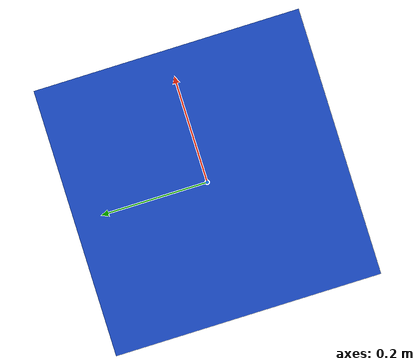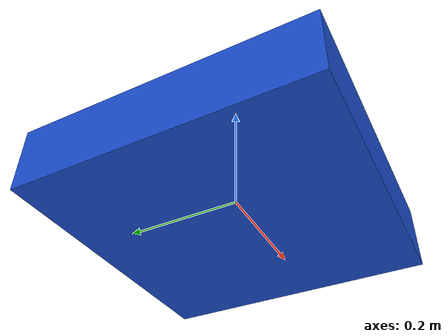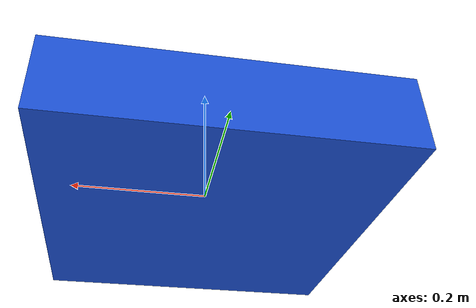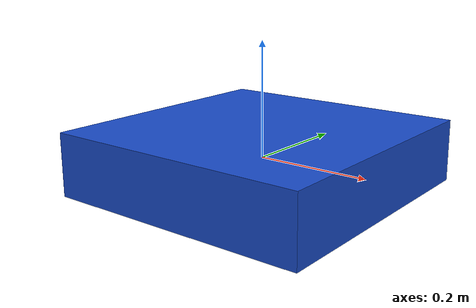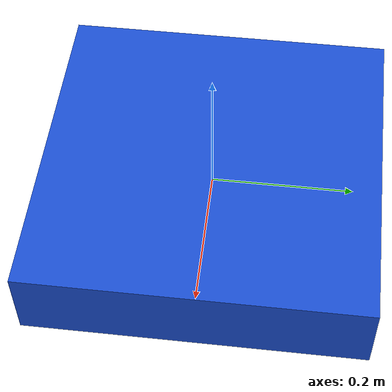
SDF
<?xml version="1.0"?>
<sdf version="1.6">
  <model name="sjtu_drone">
    <link name="base_link">
      <pose>0 0 0 0 0 0</pose>
      <gravity>false</gravity>
      <inertial>
        <mass>1.477</mass>
        <inertia><ixx>0.01152</ixx><iyy>0.01152</iyy><izz>0.0218</izz></inertia>
      </inertial>
      <collision name="body_col"><geometry><box><size>0.47 0.47 0.11</size></box></geometry></collision>
      <visual name="body_vis"><geometry><box><size>0.47 0.47 0.11</size></box></geometry><material><ambient>0.1 0.3 0.8 1</ambient></material></visual>

      <sensor name="left_camera" type="camera">
        <pose>0.25 0.06 0.00 0 0 0</pose>
        <always_on>true</always_on><update_rate>30</update_rate><visualize>false</visualize>
        <camera name="left_camera">
          <horizontal_fov>1.3962634</horizontal_fov>
          <image><width>752</width><height>480</height><format>R8G8B8</format></image>
          <clip><near>0.05</near><far>50.0</far></clip>
        </camera>
        <plugin name="left_camera_plugin" filename="libgazebo_ros_camera.so">
          <ros><namespace>/simple_drone</namespace><remapping>image_raw:=left_camera/image_raw</remapping><remapping>camera_info:=left_camera/camera_info</remapping></ros>
          <camera_name>left_camera</camera_name>
          <frame_name>left_camera_link</frame_name>
        </plugin>
      </sensor>

      <sensor name="right_camera" type="camera">
        <pose>0.25 -0.06 0.00 0 0 0</pose>
        <always_on>true</always_on><update_rate>30</update_rate><visualize>false</visualize>
        <camera name="right_camera">
          <horizontal_fov>1.3962634</horizontal_fov>
          <image><width>752</width><height>480</height><format>R8G8B8</format></image>
          <clip><near>0.05</near><far>50.0</far></clip>
        </camera>
        <plugin name="right_camera_plugin" filename="libgazebo_ros_camera.so">
          <ros><namespace>/simple_drone</namespace><remapping>image_raw:=right_camera/image_raw</remapping><remapping>camera_info:=right_camera/camera_info</remapping></ros>
          <camera_name>right_camera</camera_name>
          <frame_name>right_camera_link</frame_name>
        </plugin>
      </sensor>

      <sensor name="imu_sensor" type="imu">
        <pose>0 0 0 0 0 0</pose>
        <always_on>true</always_on><update_rate>200</update_rate>
        <plugin name="imu_plugin" filename="libgazebo_ros_imu_sensor.so">
          <ros><namespace>/simple_drone</namespace><remapping>~/out:=imu/out</remapping></ros>
          <initial_orientation_as_reference>false</initial_orientation_as_reference>
        </plugin>
      </sensor>
    </link>

    <plugin name="planar_move" filename="libgazebo_ros_planar_move.so">
      <ros><namespace>/simple_drone</namespace><remapping>cmd_vel:=cmd_vel</remapping><remapping>odom:=odom</remapping></ros>
      <update_rate>50</update_rate><publish_odom>true</publish_odom><publish_odom_tf>false</publish_odom_tf>
      <odometry_frame>odom</odometry_frame><robot_base_frame>base_link</robot_base_frame>
    </plugin>
  </model>
</sdf>
